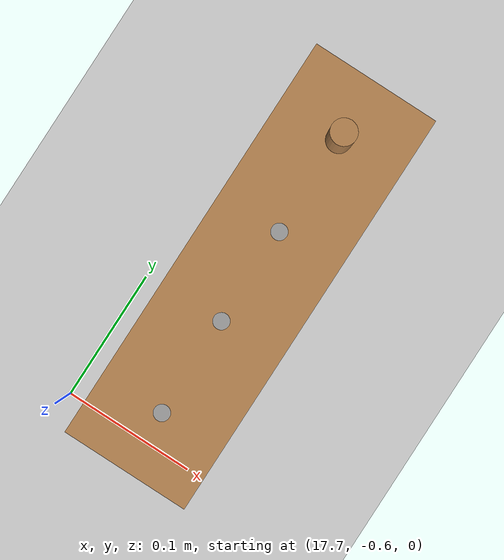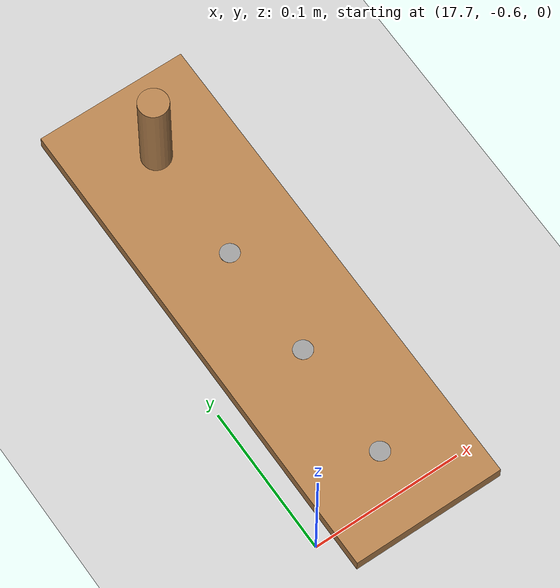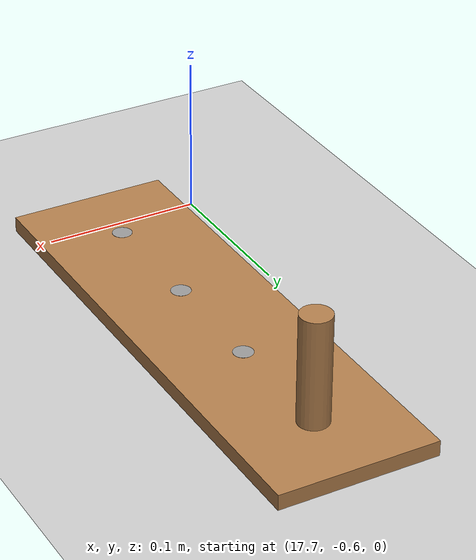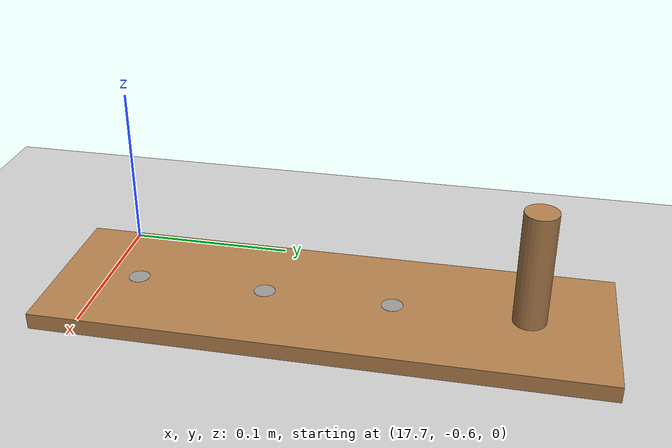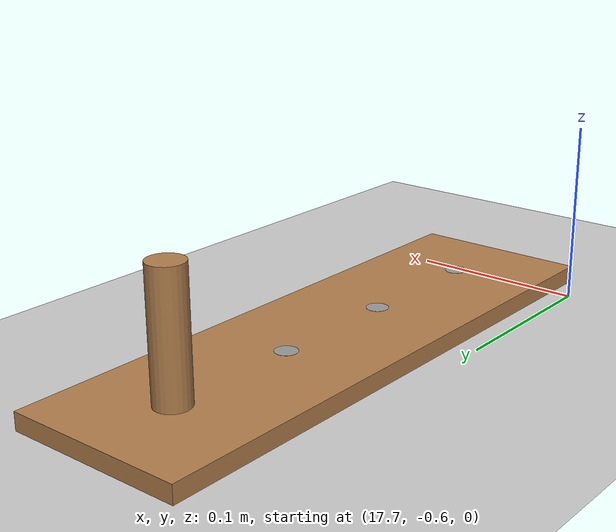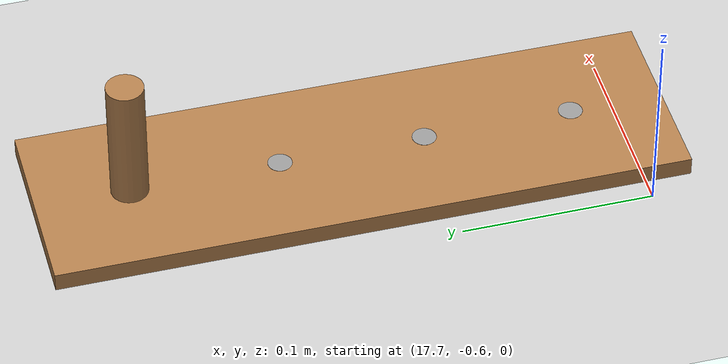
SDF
<sdf version="1.7">
 <world name="default">
  <model name="ground_plane">
   <static>1</static>
   <link name="link">
    <collision name="collision">
     <geometry><plane><normal>0 0 1</normal><size>100 100</size></plane></geometry>
     <surface><friction><ode><mu>100</mu><mu2>50</mu2></ode></friction></surface>
    </collision>
    <visual name="visual">
     <cast_shadows>0</cast_shadows>
     <geometry><plane><normal>0 0 1</normal><size>100 100</size></plane></geometry>
     <material>
      <script><uri>file://media/materials/scripts/gazebo.material</uri><name>Gazebo/Grey</name></script>
     </material>
    </visual>
   </link>
  </model>
  <model name="wooden_peg_board">
   <frame name="wooden_board::__model__" attached_to="wooden_board::base">
    <pose relative_to="__model__">0 0 0 0 -0 0</pose>
   </frame>
   <link name="wooden_board::base">
    <pose relative_to="wooden_board::__model__">0 0 0.00523 0 -0 0</pose>
    <inertial>
     <mass>0.2765</mass>
     <inertia>
      <ixx>0.0025148</ixx>
      <ixy>0</ixy>
      <ixz>0</ixz>
      <iyy>0.00024037</iyy>
      <iyz>0</iyz>
      <izz>0.00275013</izz>
     </inertia>
    </inertial>
    <collision name="collision">
     <geometry><box><size>0.1016 0.3302 0.01046</size></box></geometry>
     <surface>
      <contact>
       <poissons_ratio>0.347</poissons_ratio>
       <elastic_modulus>8.8e+09</elastic_modulus>
       <ode><kp>100000</kp><kd>100</kd><max_vel>100</max_vel><min_depth>0.001</min_depth></ode>
      </contact>
      <friction>
       <torsional>
        <coefficient>1</coefficient>
        <use_patch_radius>0</use_patch_radius>
        <surface_radius>0.01</surface_radius>
       </torsional>
      </friction>
     </surface>
    </collision>
    <visual name="visual">
     <geometry><box><size>0.1016 0.3302 0.01046</size></box></geometry>
     <material>
      <script><uri>file://media/materials/scripts/gazebo.material</uri><name>Gazebo/Wood</name></script>
     </material>
    </visual>
    <visual name="tee_nut_1">
     <pose>0 -0.116 0 0 -0 0</pose>
     <geometry><cylinder><radius>0.00635</radius><length>0.0105646</length></cylinder></geometry>
     <material>
      <script><uri>file://media/materials/scripts/gazebo.material</uri><name>Gazebo/Grey</name></script>
     </material>
    </visual>
    <visual name="tee_nut_2">
     <pose>0 -0.038 0 0 -0 0</pose>
     <geometry><cylinder><radius>0.00635</radius><length>0.0105646</length></cylinder></geometry>
     <material>
      <script><uri>file://media/materials/scripts/gazebo.material</uri><name>Gazebo/Grey</name></script>
     </material>
    </visual>
    <visual name="tee_nut_3">
     <pose>0 0.038 0 0 -0 0</pose>
     <geometry><cylinder><radius>0.00635</radius><length>0.0105646</length></cylinder></geometry>
     <material>
      <script><uri>file://media/materials/scripts/gazebo.material</uri><name>Gazebo/Grey</name></script>
     </material>
    </visual>
    <visual name="tee_nut_4">
     <pose>0 0.116 0 0 -0 0</pose>
     <geometry><cylinder><radius>0.00635</radius><length>0.0105646</length></cylinder></geometry>
     <material>
      <script><uri>file://media/materials/scripts/gazebo.material</uri><name>Gazebo/Grey</name></script>
     </material>
    </visual>
   </link>
   <frame name="peg::__model__" attached_to="peg::link">
    <pose relative_to="__model__">0 0.116 0 0 -0 0</pose>
   </frame>
   <link name="peg::link">
    <pose relative_to="peg::__model__">0 0 0.04 0 -0 0</pose>
    <inertial>
     <mass>0.0175</mass>
     <inertia>
      <ixx>9.74923e-06</ixx>
      <ixy>0</ixy>
      <ixz>0</ixz>
      <iyy>9.74923e-06</iyy>
      <iyz>0</iyz>
      <izz>8.31797e-07</izz>
     </inertia>
    </inertial>
    <collision name="collision">
     <geometry><cylinder><radius>0.00975</radius><length>0.08</length></cylinder></geometry>
     <surface>
      <contact>
       <poissons_ratio>0.347</poissons_ratio>
       <elastic_modulus>8.8e+09</elastic_modulus>
       <ode><kp>100000</kp><kd>100</kd><max_vel>100</max_vel><min_depth>0.001</min_depth></ode>
      </contact>
      <friction>
       <torsional>
        <coefficient>1</coefficient>
        <use_patch_radius>0</use_patch_radius>
        <surface_radius>0.01</surface_radius>
       </torsional>
      </friction>
     </surface>
    </collision>
    <visual name="visual">
     <geometry><cylinder><radius>0.00975</radius><length>0.08</length></cylinder></geometry>
     <material>
      <script><uri>file://media/materials/scripts/gazebo.material</uri><name>Gazebo/Wood</name></script>
     </material>
    </visual>
   </link>
   <joint name="board_peg" type="revolute">
    <parent>wooden_board::base</parent>
    <child>peg::link</child>
    <axis>
     <xyz>0 0 1</xyz>
     <limit><upper>0</upper><lower>0</lower></limit>
     <dynamics><spring_reference>0</spring_reference><spring_stiffness>0</spring_stiffness></dynamics>
    </axis>
   </joint>
   <pose>17.7626 -0.459128 -0.001004 1.3e-05 -1e-06 -1e-06</pose>
  </model>
 </world>
</sdf>
